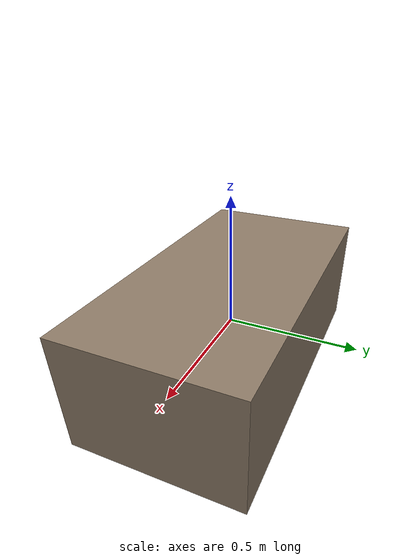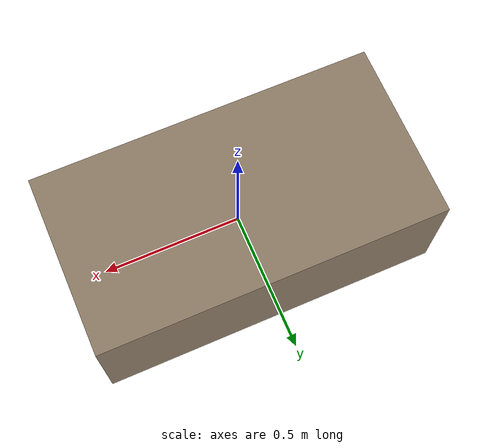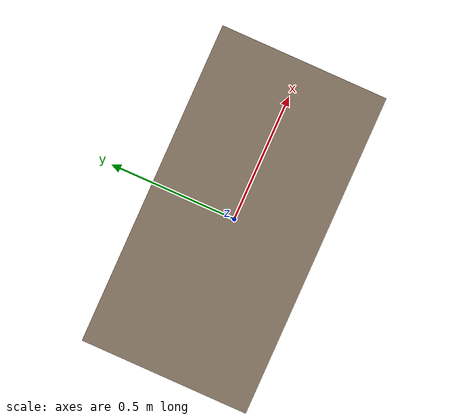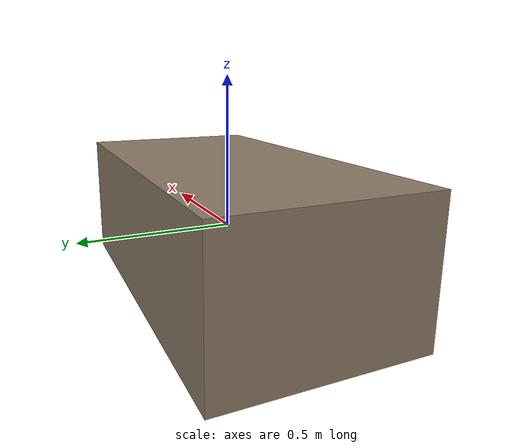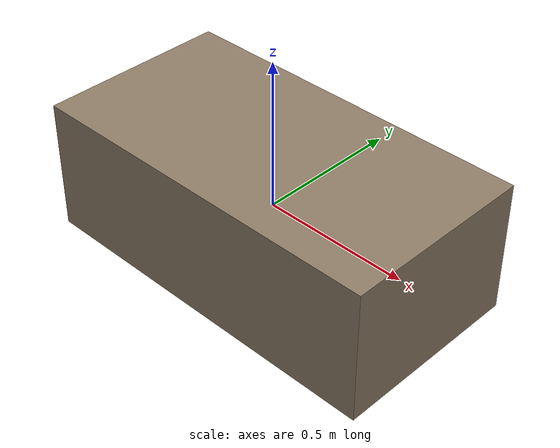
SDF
<?xml version="1.0"?>
<sdf version="1.6">
  <model name="lounge_table">
    <static>true</static>
    <link name="link">
      <collision name="col">
        <geometry>
          <box>
            <size>1.25 0.65 0.45</size>
          </box>
        </geometry>
      </collision>
      <visual name="vis">
        <geometry>
          <box>
            <size>1.25 0.65 0.45</size>
          </box>
        </geometry>
        <material>
          <ambient>0.55 0.48 0.4 1</ambient>
          <diffuse>0.55 0.48 0.4 1</diffuse>
        </material>
      </visual>
    </link>
  </model>
</sdf>
